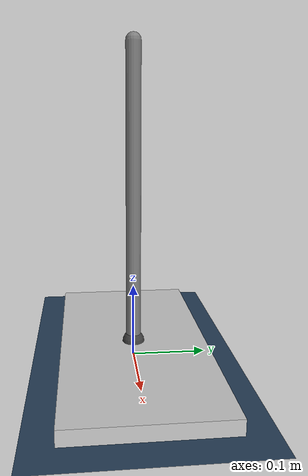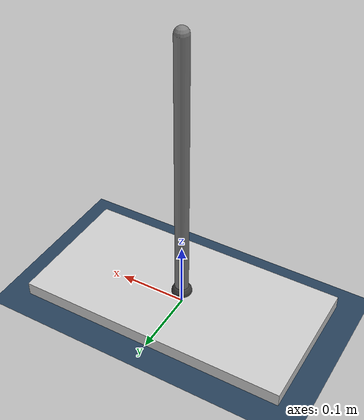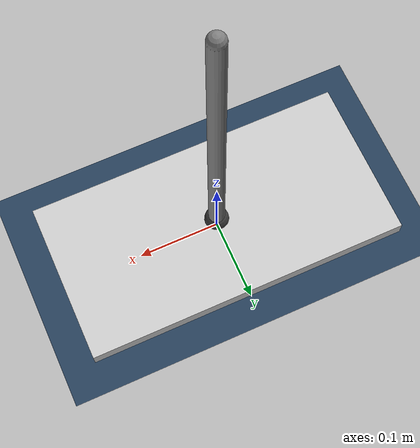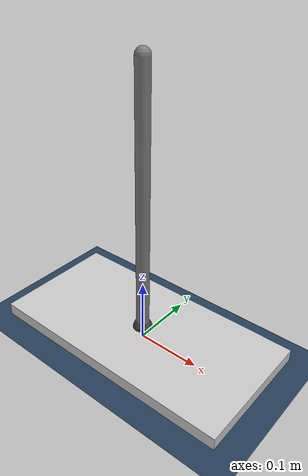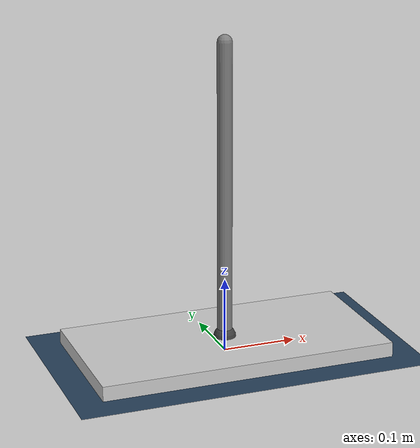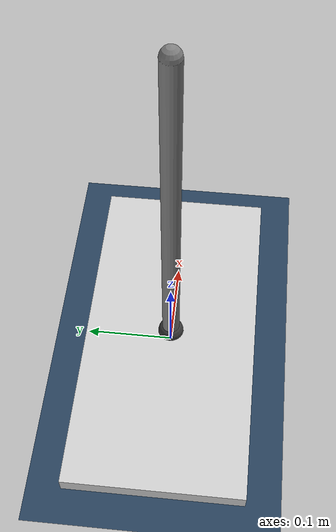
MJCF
<mujoco model="Cart-Pole">

	<option>
		<flag contact="disable"/>
	</option>

	<asset>
		<texture name="grid" type="2d" builtin="checker" width="512" height="512" rgb1=".1 .2 .3" rgb2=".2 .3 .4"/>
		<material name="grid" texture="grid" texrepeat="1 1" texuniform="true" reflectance=".2"/>
	</asset>

	<worldbody>
		<geom type="plane" size="0 0 0.1" material="grid"/>
		<light directional="false" pos="0 0 20" dir="0 0 -1" diffuse="1 1 1" active="true"/>

		<body name="Cart" pos="0 0 0.01">
			<geom type="box" size="0.2 0.1 0.01" rgba="0.8 0.8 0.8 1.0" mass="0.95"/>
            <geom type="sphere" size="0.015" pos="0.00 0.00 0.01" rgba="0.25 0.25 0.25 1.00" mass="0.05"/>
			<joint name="x" type="slide" pos="0 0 -0.25" axis="1 0 0"/>

			<body name="Pole">
				<geom type="capsule" size="0.01" fromto="0.00 0.00 0.01 0.00 0.00 0.41" mass="0.25"/>
				<joint name="theta" type="hinge" pos="0.0 0.0 0.01" axis="0 -1 0"/>
			</body>

		</body>

	</worldbody>

	<actuator>
		<motor name="u" joint="x" ctrlrange="-5.0 +5.0"/>
	</actuator>

</mujoco>
